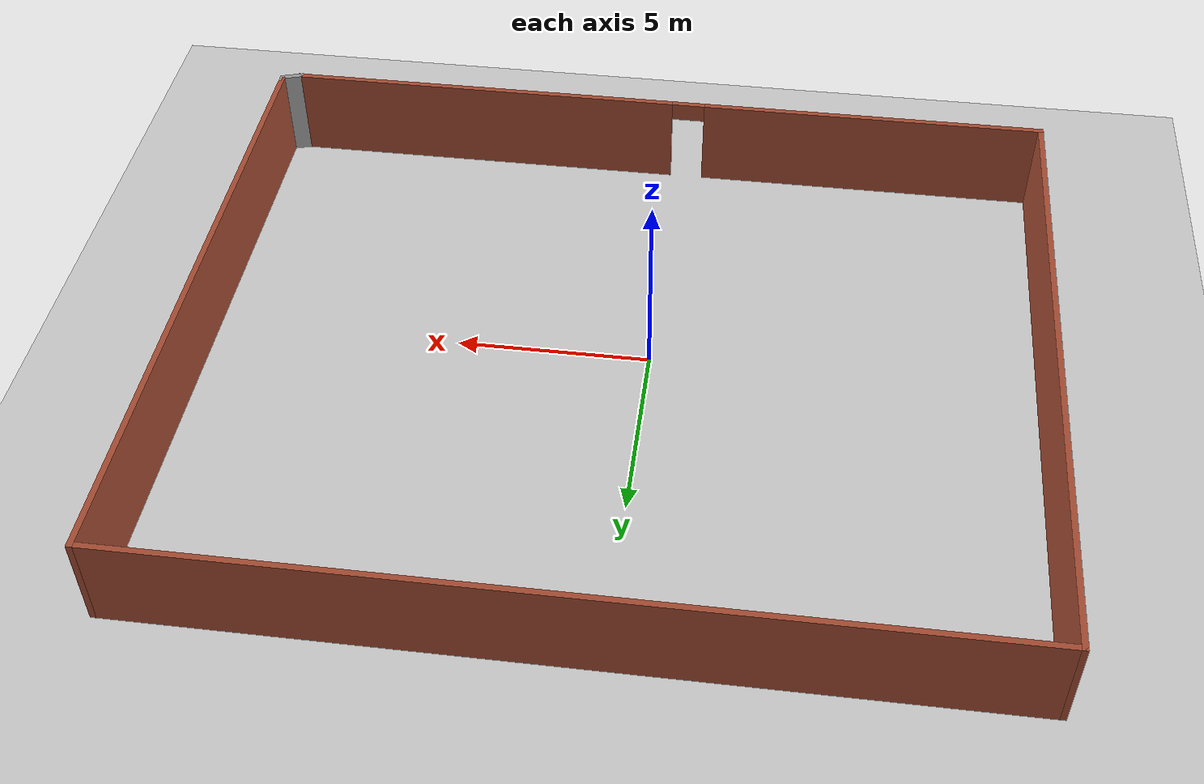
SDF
<sdf version="1.7">
 <world name="default">
  <light name="sun" type="directional">
   <pose>0 0 10 0 -0 0</pose>
   <diffuse>0.8 0.8 0.8 1</diffuse>
   <specular>0.2 0.2 0.2 1</specular>
   <attenuation>
    <range>1000</range>
    <constant>0.9</constant>
    <linear>0.01</linear>
    <quadratic>0.001</quadratic>
   </attenuation>
   <direction>-0.5 0.1 -0.9</direction>
   <spot><inner_angle>0</inner_angle><outer_angle>0</outer_angle><falloff>0</falloff></spot>
  </light>
  <model name="ground_plane">
   <static>1</static>
   <link name="link">
    <collision name="collision">
     <geometry><plane><normal>0 0 1</normal><size>100 100</size></plane></geometry>
     <surface><friction><ode><mu>100</mu><mu2>50</mu2></ode></friction></surface>
    </collision>
    <visual name="visual">
     <cast_shadows>0</cast_shadows>
     <geometry><plane><normal>0 0 1</normal><size>100 100</size></plane></geometry>
     <material>
      <script><uri>file://media/materials/scripts/gazebo.material</uri><name>Gazebo/Grey</name></script>
     </material>
    </visual>
   </link>
  </model>
  <gravity>0 0 -9.8</gravity>
  <magnetic_field>6e-06 2.3e-05 -4.2e-05</magnetic_field>
  <atmosphere type="adiabatic"/>
  <physics type="ode">
   <max_step_size>0.001</max_step_size>
   <real_time_factor>1</real_time_factor>
   <real_time_update_rate>1000</real_time_update_rate>
  </physics>
  <scene><ambient>0.4 0.4 0.4 1</ambient><background>0.7 0.7 0.7 1</background><shadows>1</shadows></scene>
  <spherical_coordinates>
   <surface_model>EARTH_WGS84</surface_model>
   <latitude_deg>0</latitude_deg>
   <longitude_deg>0</longitude_deg>
   <elevation>0</elevation>
   <heading_deg>0</heading_deg>
  </spherical_coordinates>
  <light name="user_spot_light_0" type="spot">
   <pose>0.669335 0.37371 1 0 -0 0</pose>
   <diffuse>0.5 0.5 0.5 1</diffuse>
   <specular>0.1 0.1 0.1 1</specular>
   <direction>0 0 -1</direction>
   <attenuation>
    <range>20</range>
    <constant>0.5</constant>
    <linear>0.01</linear>
    <quadratic>0.001</quadratic>
   </attenuation>
   <cast_shadows>0</cast_shadows>
   <spot><inner_angle>0.6</inner_angle><outer_angle>1</outer_angle><falloff>1</falloff></spot>
  </light>
  <model name="Room">
   <pose>0.756896 0.919786 0 0 -0 0</pose>
   <link name="Wall_32">
    <pose>-0.259193 -8.66581 0 0 -0 0</pose>
    <visual name="Wall_32_Visual_0">
     <pose>-5.82427 0 1.25 0 -0 0</pose>
     <geometry><box><size>9.35146 0.15 2.5</size></box></geometry>
     <material>
      <script><uri>file://media/materials/scripts/gazebo.material</uri><name>Gazebo/Bricks</name></script>
      <ambient>0.458824 0.313726 0.482353 1</ambient>
     </material>
     <meta><layer>0</layer></meta>
    </visual>
    <collision name="Wall_32_Collision_0">
     <geometry><box><size>9.35146 0.15 2.5</size></box></geometry>
     <pose>-5.82427 0 1.25 0 -0 0</pose>
    </collision>
    <visual name="Wall_32_Visual_1">
     <pose>5.12573 0 1.25 0 -0 0</pose>
     <geometry><box><size>10.7485 0.15 2.5</size></box></geometry>
     <material>
      <script><uri>file://media/materials/scripts/gazebo.material</uri><name>Gazebo/Bricks</name></script>
      <ambient>0.458824 0.313726 0.482353 1</ambient>
     </material>
     <meta><layer>0</layer></meta>
    </visual>
    <collision name="Wall_32_Collision_1">
     <geometry><box><size>10.7485 0.15 2.5</size></box></geometry>
     <pose>5.12573 0 1.25 0 -0 0</pose>
    </collision>
    <visual name="Wall_32_Visual_2">
     <pose>-0.698542 0 2.25 0 -0 0</pose>
     <geometry><box><size>0.9 0.15 0.5</size></box></geometry>
     <material>
      <script><uri>file://media/materials/scripts/gazebo.material</uri><name>Gazebo/Bricks</name></script>
      <ambient>0.458824 0.313726 0.482353 1</ambient>
     </material>
     <meta><layer>0</layer></meta>
    </visual>
    <collision name="Wall_32_Collision_2">
     <geometry><box><size>0.9 0.15 0.5</size></box></geometry>
     <pose>-0.698542 0 2.25 0 -0 0</pose>
    </collision>
   </link>
   <link name="Wall_34">
    <collision name="Wall_34_Collision">
     <geometry><box><size>17.5 0.15 2.5</size></box></geometry>
     <pose>0 0 1.25 0 -0 0</pose>
    </collision>
    <visual name="Wall_34_Visual">
     <pose>0 0 1.25 0 -0 0</pose>
     <geometry><box><size>17.5 0.15 2.5</size></box></geometry>
     <material>
      <script><uri>file://media/materials/scripts/gazebo.material</uri><name>Gazebo/Bricks</name></script>
      <ambient>0.458824 0.313726 0.482353 1</ambient>
     </material>
     <meta><layer>0</layer></meta>
    </visual>
    <pose>-10.6842 0.009193 0 0 -0 1.5708</pose>
   </link>
   <link name="Wall_35">
    <collision name="Wall_35_Collision">
     <geometry><box><size>21.5 0.15 2.5</size></box></geometry>
     <pose>0 0 1.25 0 -0 0</pose>
    </collision>
    <visual name="Wall_35_Visual">
     <pose>0 0 1.25 0 -0 0</pose>
     <geometry><box><size>21.5 0.15 2.5</size></box></geometry>
     <material>
      <script><uri>file://media/materials/scripts/gazebo.material</uri><name>Gazebo/Bricks</name></script>
      <ambient>0.458824 0.313726 0.482353 1</ambient>
     </material>
     <meta><layer>0</layer></meta>
    </visual>
    <pose>-0.009193 8.68419 0 0 -0 0</pose>
   </link>
   <link name="Wall_36">
    <collision name="Wall_36_Collision">
     <geometry><box><size>17.25 0.15 2.5</size></box></geometry>
     <pose>0 0 1.25 0 -0 0</pose>
    </collision>
    <visual name="Wall_36_Visual">
     <pose>0 0 1.25 0 -0 0</pose>
     <geometry><box><size>17.25 0.15 2.5</size></box></geometry>
     <material>
      <script><uri>file://media/materials/scripts/gazebo.material</uri><name>Gazebo/Bricks</name></script>
      <ambient>0.458824 0.313726 0.482353 1</ambient>
     </material>
     <meta><layer>0</layer></meta>
    </visual>
    <pose>10.6658 0.134193 0 0 -0 -1.5708</pose>
   </link>
   <link name="Wall_37">
    <collision name="Wall_37_Collision">
     <geometry><box><size>0.25 0.15 2.5</size></box></geometry>
     <pose>0 0 1.25 0 -0 0</pose>
    </collision>
    <visual name="Wall_37_Visual">
     <pose>0 0 1.25 0 -0 0</pose>
     <geometry><box><size>0.25 0.15 2.5</size></box></geometry>
     <material>
      <script><uri>file://media/materials/scripts/gazebo.material</uri><name>Gazebo/Grey</name></script>
      <ambient>1 1 1 1</ambient>
     </material>
     <meta><layer>0</layer></meta>
    </visual>
    <pose>10.6658 -8.46581 0 0 -0 -1.5708</pose>
   </link>
   <link name="Wall_38">
    <collision name="Wall_38_Collision">
     <geometry><box><size>0.672015 0.15 2.5</size></box></geometry>
     <pose>0 0 1.25 0 -0 0</pose>
    </collision>
    <visual name="Wall_38_Visual">
     <pose>0 0 1.25 0 -0 0</pose>
     <geometry><box><size>0.672015 0.15 2.5</size></box></geometry>
     <material>
      <script><uri>file://media/materials/scripts/gazebo.material</uri><name>Gazebo/Grey</name></script>
      <ambient>1 1 1 1</ambient>
     </material>
     <meta><layer>0</layer></meta>
    </visual>
    <pose>10.4158 -8.59081 0 0 -0 -2.85014</pose>
   </link>
   <static>1</static>
  </model>
 </world>
</sdf>
